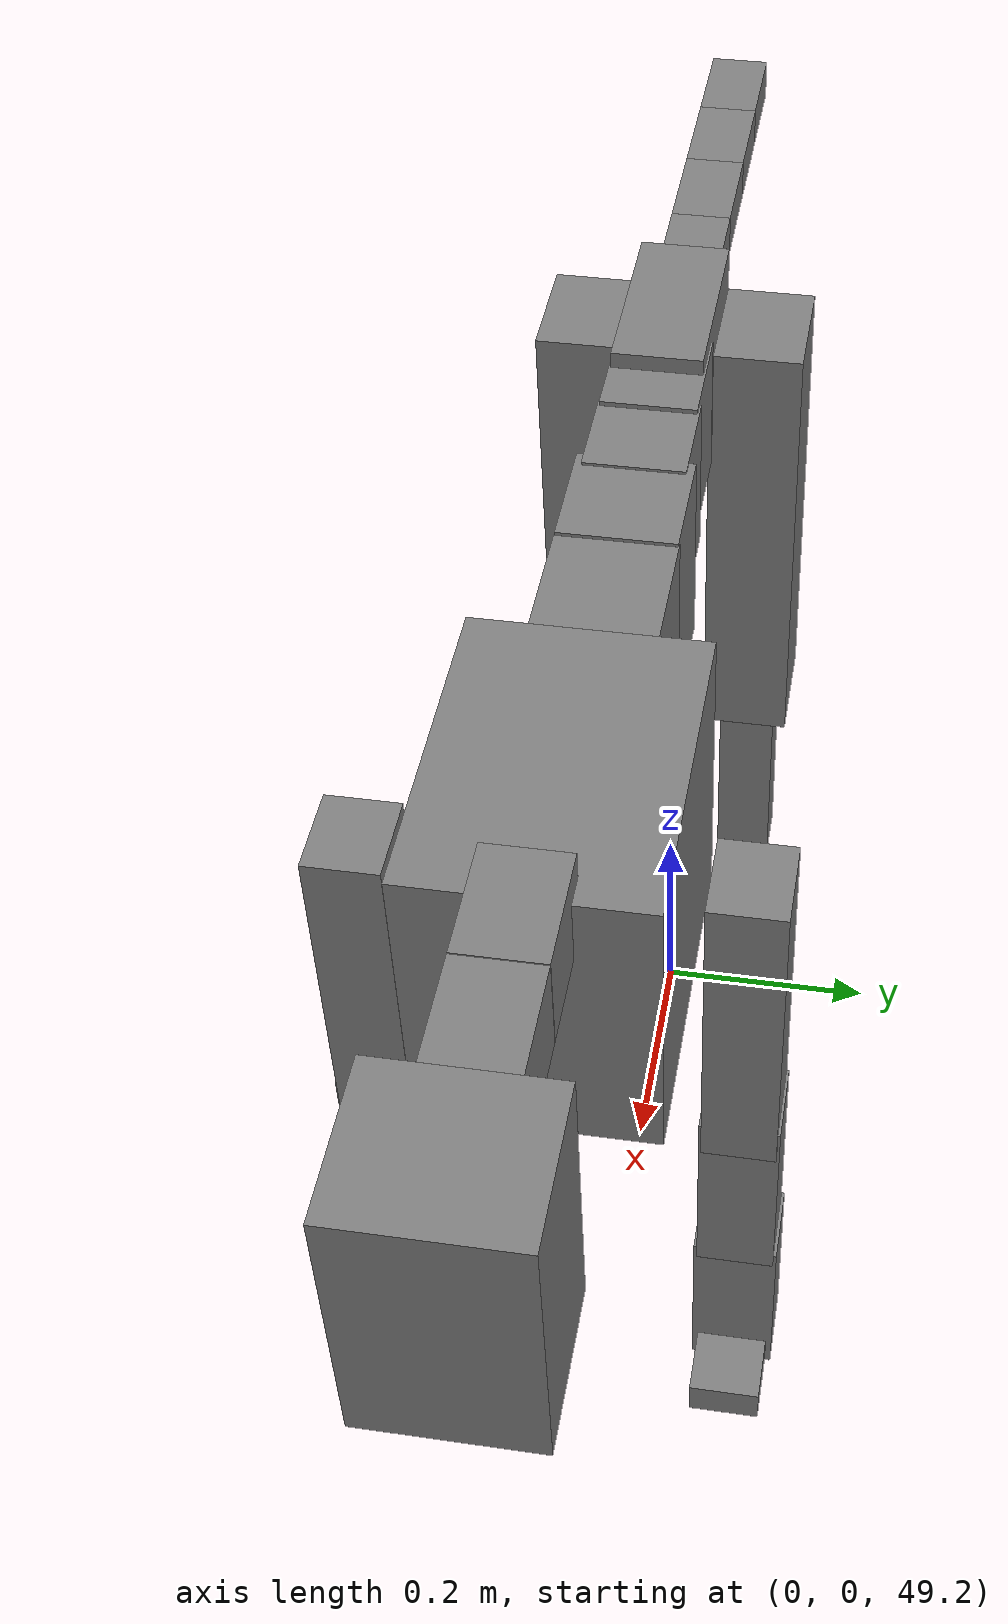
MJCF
<mujoco model="dog">

    <default>
        <joint armature="0.02" stiffness="1" damping="0.2" limited="true"/>
        <geom condim="3" friction="1 0.05 0.05" margin="0.01"/>
        <motor ctrllimited="true" ctrlrange="-1.0 1.0" forcelimited="true" gear="50"/>
    </default>

    <compiler inertiafromgeom="true" angle="radian"/>

    <option timestep="0.016" iterations="50" tolerance="1e-10" solver="Newton" jacobian="dense" cone="pyramidal"/>

    <size nconmax="20000" njmax="60000" nstack="5000000"/>
    <visual>
        <map force="0.1" zfar="30"/>
        <rgba haze="0.15 0.25 0.35 1"/>
        <quality shadowsize="2048"/>
        <global offwidth="800" offheight="800"/>
    </visual>

    <asset>
        <texture type="skybox" builtin="gradient" rgb1="0.3 0.5 0.7" rgb2="0 0 0" width="512" height="512"/>
        <texture name="texplane" type="2d" builtin="checker" rgb1=".2 .3 .4" rgb2=".1 0.15 0.2" width="512" height="512"
                 mark="cross" markrgb=".8 .8 .8"/>
        <texture name="texgeom" type="cube" builtin="flat" mark="cross" width="127" height="1278" rgb1="0.8 0.6 0.4"
                 rgb2="0.8 0.6 0.4" markrgb="1 1 1" random="0.01"/>

        <material name="matplane" reflectance="0.3" texture="texplane" texrepeat="1 1" texuniform="true"/>
        <material name="matgeom" texture="texgeom" texuniform="true" rgba="0.8 0.6 .4 1"/>
    </asset>

    <worldbody>
        <geom name="floor" pos="0 0 0" size="0 0 .25" type="plane" material="matplane" condim="3"/>

        <light directional="false" diffuse=".2 .2 .2" specular="0 0 0" pos="0 0 5" dir="0 0 -1" castshadow="false"/>
        <light mode="targetbodycom" target="torso" directional="false" diffuse=".8 .8 .8" specular="0.3 0.3 0.3"
               pos="0 0 4.0" dir="0 0 -1"/>

        <body name="root" pos="0 0 50">
            <freejoint name="root_1"/>
            <geom type="box" pos="0 0 -0.02" size="0.0774  0.0358  0.063" density="2030"/>

            <body name="spine1" pos="0.054 0 0">
                <joint name="spine1_y" axis="0 1 0" range="0 0.7" limited="true"/>
                <geom type="box" pos="0.02375 0 -0.03" size="0.04375  0.0375  0.05985" density="2030"/>

                <body name="spine2" pos="0.0612 0 0">
                    <joint name="spine2_y" axis="0 1 0" range="-0.15 0.15" limited="true"/>
                    <geom type="box" pos="0.03555  0  -0.04" size="0.04055  0.039  0.06615" density="2030"/>

                    <body name="spine3" pos="0.0730 0 0">
                        <joint name="spine3_y" axis="0 1 0" range="-0.15 0.15" limited="true"/>
                        <geom type="box" pos="0.03555  0  -0.057" size="0.04555  0.0445  0.081" density="2030"/>

                        <body name="spine4" pos="0.0780 0 0">
                            <joint name="spine4_y" axis="0 1 0" range="-0.15 0.15" limited="true"/>
                            <geom type="box" pos="0.05265  0  -0.07" size="0.05265  0.045  0.09135" density="2030"/>

                            <body name="torso" pos="0.1082 0 0">
                                <joint name="torso_y" axis="0 1 0" range="-0.15 0.15" limited="true"/>
                                <geom type="box" pos="0.11925  0  -0.085" size="0.11925  0.085  0.11745"
                                      density="2030"/>

                                <body name="neck1" pos="0.2160  0   0.0180">
                                    <joint name="neck1_y" axis="0 1 0" range="-1.2  -1" limited="true"/>
                                    <geom type="box" pos="0.0423  0  0" size="0.0423  0.03  0.036" density="2325"/>

                                    <body name="neck2" pos="0.0853  0  0">
                                        <joint name="neck2_y" axis="0 1 0" range="0.1  0" limited="true"/>
                                        <geom type="box" pos="0.0423  0  0" size="0.0423  0.03  0.036" density="2325"/>

                                        <body name="head" pos="0.0853  0  0">
                                            <joint name="head_y" axis="0 1 0" range="-0.3  -0.2" limited="true"/>
                                            <geom type="box" pos="0.0531  0  -0.055" size="0.0531  0.06  0.1044"
                                                  density="4030"/>

                                        </body>
                                    </body>
                                </body>

                                <body name="front_shoulder" pos="0.156  0   -0.0480">
                                    <joint name="front_shoulder_y" axis="0 1 0" range="-1 1.5" limited="true"/>
                                    <geom type="box" pos="0 0.13 -0.1041" size="0.0312  0.0267  0.1307" density="1158"/>
                                    <geom type="box" pos="0 -0.13 -0.1041" size="0.0312  0.0267  0.1307"
                                          density="1158"/>

                                    <body name="front_elbow" pos="0  0  -0.2081">
                                        <joint name="front_elbow_y" axis="0 1 0" range="-2 0" limited="true"/>
                                        <geom type="box" pos="0 0.13 -0.0840" size="0.0280  0.0286  0.0840"
                                              density="1081"/>
                                        <geom type="box" pos="0 -0.13 -0.0840" size="0.0280  0.0286  0.0840"
                                              density="1081"/>

                                        <body name="front_wrist" pos="0  0  -0.1680">
                                            <joint name="front_wrist_y" axis="0 1 0" range="-0.2 0" limited="true"/>
                                            <geom type="box" pos="0 0.13 -0.0624" size="0.0278  0.0309  0.0755"
                                                  density="1664"/>
                                            <geom type="box" pos="0 -0.13 -0.0624" size="0.0278  0.0309  0.0755"
                                                  density="1664"/>

                                            <body name="front_finger_end" pos="0  0  -0.1248">
                                                <joint name="front_finger_y" axis="0 1 0" range="-0.4 1"
                                                       limited="true"/>
                                                <geom type="box" pos="0.0266  0.13  -0.0004"
                                                      size="0.0487  0.0266  0.0154" density="1515"/>
                                                <geom type="box" pos="0.0266  -0.13  -0.0004"
                                                      size="0.0487  0.0266  0.0154" density="1515"/>

                                            </body>

                                        </body>
                                    </body>
                                </body>

                            </body>
                        </body>
                    </body>
                </body>
            </body>

            <body name="back_hip" pos="-0.03 0 -0.018">
                <joint name="back_hip_y" axis="0 1 0" range="-1.5 0.3" limited="true"/>
                <geom type="box" pos="0 0.07 -0.1805" size="0.0474  0.0372  0.2033" density="1154"/>
                <geom type="box" pos="0 -0.07 -0.1805" size="0.0474  0.0372  0.2033" density="1154"/>

                <body name="back_knee" pos="0  0  -0.3609">
                    <joint name="back_knee_y" axis="0 1 0" range="0 2.8" limited="true"/>
                    <geom type="box" pos="0 0.07 -0.1038" size="0.0248  0.0244  0.1194" density="1227"/>
                    <geom type="box" pos="0 -0.07 -0.1038" size="0.0248  0.0244  0.1194" density="1227"/>

                    <body name="back_ankle" pos="0  0  -0.2077">
                        <joint name="back_ankle_y" axis="0 1 0" range="-2.2 0" limited="true"/>
                        <geom type="box" pos="0 0.07 -0.0448" size="0.0170  0.0170  0.0561" density="1284"/>
                        <geom type="box" pos="0 -0.07 -0.0448" size="0.0170  0.0170  0.0561" density="1284"/>

                        <body name="back_toe_end" pos="0  0  -0.0897">
                            <joint name="back_toe_y" axis="0 1 0" range="-0.4 1" limited="true"/>
                            <geom type="box" pos="0.0226  0.07  -0.0080" size="0.0414  0.0226  0.0230" density="1515"/>
                            <geom type="box" pos="0.0226  -0.07  -0.0080" size="0.0414  0.0226  0.0230" density="1515"/>

                        </body>
                    </body>
                </body>
            </body>

            <body name="tail1" pos="-0.074 0 -0.006">
                <joint name="tail1_y" axis="0 1 0" range="-0.2 0.2" limited="true"/>
                <geom type="box" pos="-0.0536  0  0" size="0.045  0.025  0.0175" density="1587"/>

                <body name="tail2" pos="-0.09 0 0">
                    <joint name="tail2_y" axis="0 1 0" range="-0.2 0.2" limited="true"/>
                    <geom type="box" pos="-0.0536  0  0" size="0.045  0.025  0.0175" density="1587"/>

                    <body name="tail3" pos="-0.09 0 0">
                        <joint name="tail3_y" axis="0 1 0" range="-0.2 0.2" limited="true"/>
                        <geom type="box" pos="-0.0536  0  0" size="0.045  0.025  0.0175" density="1587"/>

                        <body name="tail4" pos="-0.09 0 0">
                            <joint name="tail4_y" axis="0 1 0" range="-0.2 0.2" limited="true"/>
                            <geom type="box" pos="-0.0536  0  0" size="0.045  0.025  0.0175" density="1587"/>

                        </body>
                    </body>
                </body>
            </body>
        </body>
    </worldbody>

    <actuator>
        <motor joint="spine1_y" forcerange="-150 150     "/>
        <motor joint="spine2_y" forcerange="-150 150     "/>
        <motor joint="spine3_y" forcerange="-150 150     "/>
        <motor joint="spine4_y" forcerange="-150 150     "/>
        <motor joint="torso_y" forcerange="-150 150     "/>
        <motor joint="neck1_y" forcerange="-100 100       "/>
        <motor joint="neck2_y" forcerange="-100 100       "/>
        <motor joint="head_y" forcerange="-150 150       "/>
        <motor joint="front_shoulder_y" forcerange="-107.03 170.94"/>
        <motor joint="front_elbow_y" forcerange="-139.13 168.75"/>
        <motor joint="front_wrist_y" forcerange="-148.61 98.69"/>
        <motor joint="front_finger_y" forcerange="-25.80 75.81"/>
        <motor joint="back_hip_y" forcerange="-341.26 354.69"/>
        <motor joint="back_knee_y" forcerange="-325.61 229.57"/>
        <motor joint="back_angle_y" forcerange="-107.66 63.56"/>
        <motor joint="back_toe_y" forcerange="-30.79 70.02"/>
        <motor joint="tail1_y" forcerange="-50 50     "/>
        <motor joint="tail2_y" forcerange="-50 50     "/>
        <motor joint="tail3_y" forcerange="-50 50     "/>
        <motor joint="tail4_y" forcerange="-50 50     "/>
    </actuator>
</mujoco>
